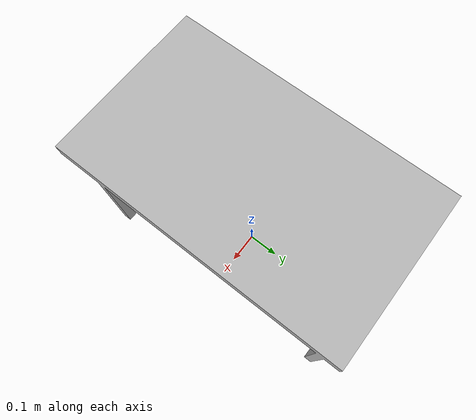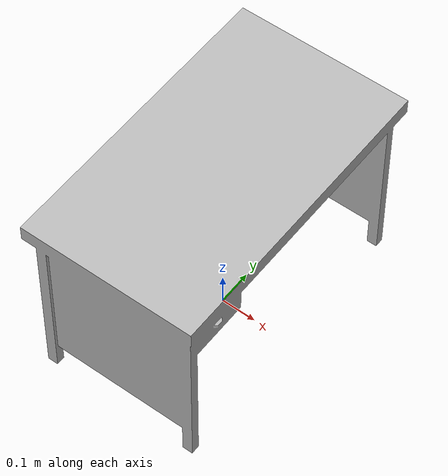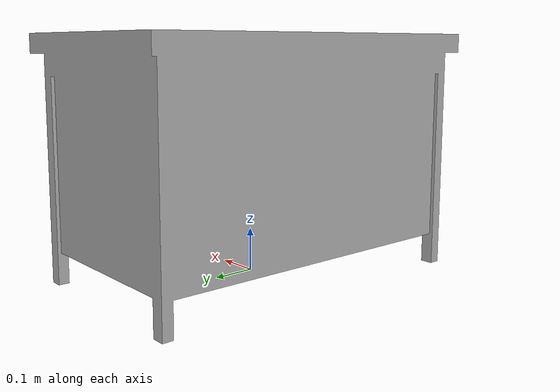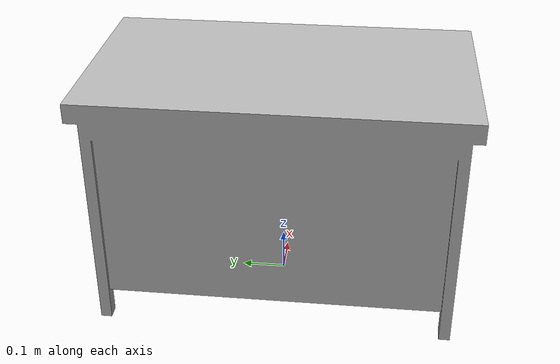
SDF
<?xml version="1.0" ?>
<sdf version="1.5">
  <model name="Desk">
    <link name="link">
      <pose>0 0 0 0 0 0</pose>

      <inertial>
        <mass>50</mass>
        <inertia>
          <ixx>5</ixx>
          <ixy>0</ixy>
          <ixz>0</ixz>
          <iyy>5</iyy>
          <iyz>0</iyz>
          <izz>5</izz>
        </inertia>
      </inertial>

      <collision name="tabletop">
        <geometry>
          <box><size>1.2 0.8 0.05</size></box>
        </geometry>
        <pose>0 0 0.375 0 0 0</pose>
      </collision>

      <collision name="legs">
        <geometry>
          <box><size>0.84 0.04 0.75</size></box>
        </geometry>
      </collision>

      <visual name="visual">
        <geometry>
          <mesh><uri>meshes/desk.obj</uri></mesh>
        </geometry>
      </visual>

    </link>
  </model>
</sdf>
